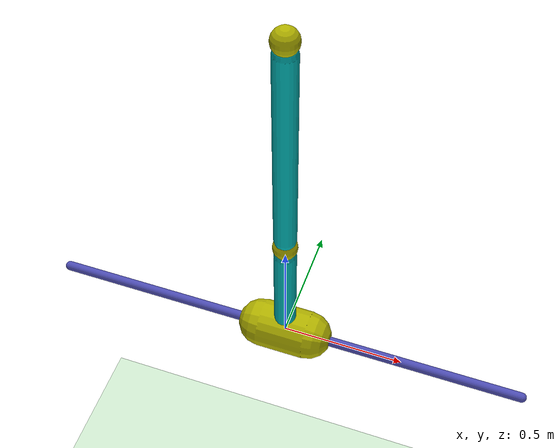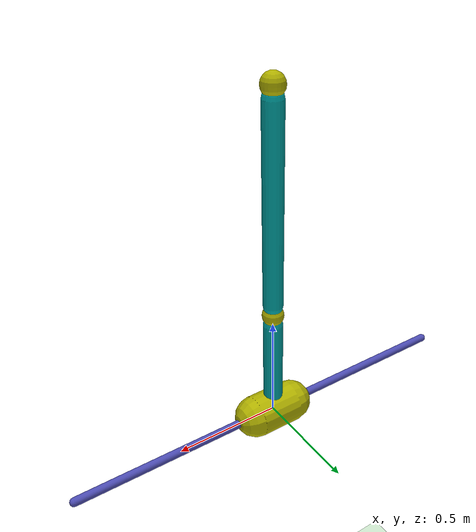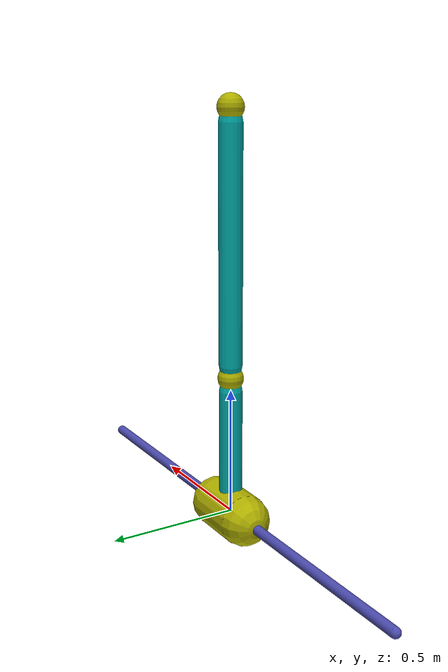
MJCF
<mujoco model="cartpole">
  <compiler coordinate="local" inertiafromgeom="true"/>
  <custom>
    <numeric data="2" name="frame_skip"/>
  </custom>
  <default>
    <joint damping="0.05"/>
    <geom contype="0" friction="1 0.1 0.1" rgba="0.7 0.7 0 1"/>
  </default>
  <option gravity="1e-5 0 -9.81" integrator="RK4" timestep="0.01"/>
  <size nstack="3000"/>
  <worldbody>
    <geom name="floor" pos="0 0 -3.0" rgba="0.8 0.9 0.8 1" size="40 40 40" type="plane"/>
    <geom name="rail" pos="0 0 0" quat="0.707 0 0.707 0" rgba="0.3 0.3 0.7 1" size="0.02 1" type="capsule"/>
    <body name="cart" pos="0 0 0">
      <joint axis="1 0 0" limited="true" margin="0.01" name="slider" pos="0 0 0" range="-1 1" type="slide"/>
      <geom name="cart" pos="0 0 0" quat="0.707 0 0.707 0" size="0.1 0.1" type="capsule"/>
      <body name="pole" pos="0 0 0">
        <joint axis="0 1 0" name="hinge" pos="0 0 0" type="hinge"/>
        <geom fromto="0 0 0 0 0 0.5" name="cpole" rgba="0 0.7 0.7 1" size="0.045 0.3" type="capsule"/>
	<body name="mass1" pos="0 0 0.5">
	<geom fromto="0 0 0 0 0 0.1" name="massball1" size="0.05" mass="1.0" type="sphere"/>
        <body name="pole2" pos="0 0 0.1">
          <joint axis="0 1 0" name="hinge2" pos="0 0 0" type="hinge"/>
          <geom fromto="0 0 0 0 0 0.9" name="cpole2" rgba="0 0.7 0.7 1" size="0.045 0.3" type="capsule"/>
		<body name="mass2" pos="0 0 0.9">
		<geom fromto="0 0 0 0 0 0.1" name="massball2" size="0.05" mass="2.0" type="sphere"/>
          <!--site name="tip" pos="0 0 .6" size="0.01 0.01"/-->
	</body>
	</body>
        </body>
      </body>
    </body>
  </worldbody>
  <actuator>
    <motor ctrllimited="true" ctrlrange="-1 1" gear="500" joint="slider" name="slide"/>
  </actuator>
</mujoco>
